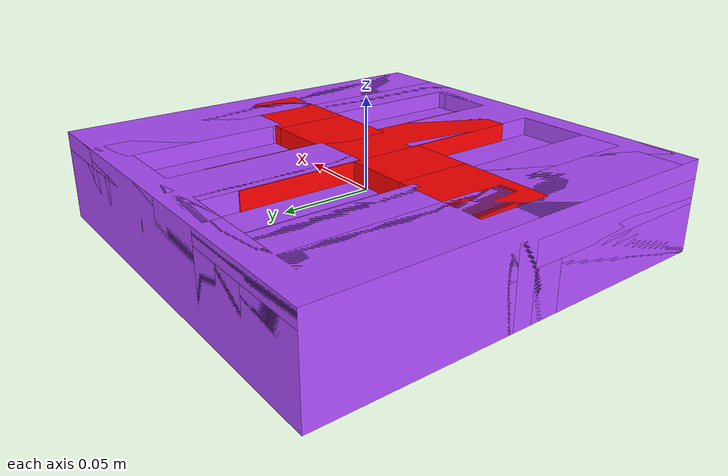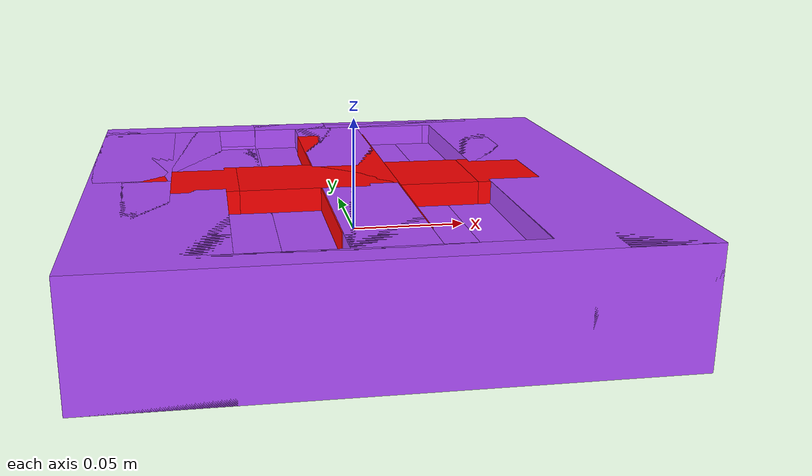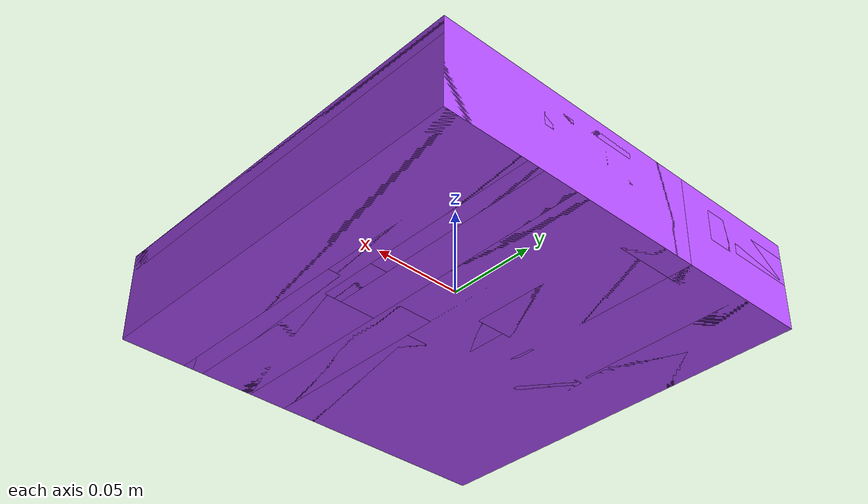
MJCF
<?xml version='1.0' encoding='utf-8'?>
<mujoco model="obj1">
  <asset>
    <mesh name="obj1" file="obj1.obj" scale="0.001 0.001 0.001" />
    <material name="mat1" rgba="0.6902 0.30588 1 1" />
    <mesh name="obj1_p0" file="obj1_part_0.obj" scale="0.001 0.001 0.001" />
    <mesh name="obj1_p1" file="obj1_part_1.obj" scale="0.001 0.001 0.001" />
    <mesh name="obj1_p2" file="obj1_part_2.obj" scale="0.001 0.001 0.001" />
    <mesh name="obj1_p3" file="obj1_part_3.obj" scale="0.001 0.001 0.001" />
    <mesh name="obj1_p4" file="obj1_part_4.obj" scale="0.001 0.001 0.001" />
    <mesh name="obj1_p5" file="obj1_part_5.obj" scale="0.001 0.001 0.001" />
    <mesh name="obj1_p6" file="obj1_part_6.obj" scale="0.001 0.001 0.001" />
    <mesh name="obj1_p7" file="obj1_part_7.obj" scale="0.001 0.001 0.001" />
    <mesh name="obj1_p8" file="obj1_part_8.obj" scale="0.001 0.001 0.001" />
    <mesh name="obj1_p9" file="obj1_part_9.obj" scale="0.001 0.001 0.001" />
    <mesh name="obj1_p10" file="obj1_part_10.obj" scale="0.001 0.001 0.001" />
    <mesh name="obj1_p11" file="obj1_part_11.obj" scale="0.001 0.001 0.001" />
    <mesh name="obj1_p12" file="obj1_part_12.obj" scale="0.001 0.001 0.001" />
    <mesh name="obj1_p13" file="obj1_part_13.obj" scale="0.001 0.001 0.001" />
    <mesh name="obj1_p14" file="obj1_part_14.obj" scale="0.001 0.001 0.001" />
    <mesh name="obj1_p15" file="obj1_part_15.obj" scale="0.001 0.001 0.001" />
    <mesh name="obj1_p16" file="obj1_part_16.obj" scale="0.001 0.001 0.001" />
    <mesh name="obj1_p17" file="obj1_part_17.obj" scale="0.001 0.001 0.001" />
    <mesh name="obj1_p18" file="obj1_part_18.obj" scale="0.001 0.001 0.001" />
    <mesh name="obj1_p19" file="obj1_part_19.obj" scale="0.001 0.001 0.001" />
    <mesh name="obj1_p20" file="obj1_part_20.obj" scale="0.001 0.001 0.001" />
    <mesh name="obj1_p21" file="obj1_part_21.obj" scale="0.001 0.001 0.001" />
    <mesh name="obj1_p22" file="obj1_part_22.obj" scale="0.001 0.001 0.001" />
    <mesh name="obj1_p23" file="obj1_part_23.obj" scale="0.001 0.001 0.001" />
    <mesh name="obj1_p24" file="obj1_part_24.obj" scale="0.001 0.001 0.001" />
    <mesh name="obj1_p25" file="obj1_part_25.obj" scale="0.001 0.001 0.001" />
    <mesh name="obj1_p26" file="obj1_part_26.obj" scale="0.001 0.001 0.001" />
    <mesh name="obj1_p27" file="obj1_part_27.obj" scale="0.001 0.001 0.001" />
    <mesh name="obj1_p28" file="obj1_part_28.obj" scale="0.001 0.001 0.001" />
    <mesh name="obj1_p29" file="obj1_part_29.obj" scale="0.001 0.001 0.001" />
    <mesh name="obj1_p30" file="obj1_part_30.obj" scale="0.001 0.001 0.001" />
    <mesh name="obj1_p31" file="obj1_part_31.obj" scale="0.001 0.001 0.001" />
    <mesh name="obj1_p32" file="obj1_part_32.obj" scale="0.001 0.001 0.001" />
    <mesh name="obj1_p33" file="obj1_part_33.obj" scale="0.001 0.001 0.001" />
    <mesh name="obj1_p34" file="obj1_part_34.obj" scale="0.001 0.001 0.001" />
    <mesh name="obj1_p35" file="obj1_part_35.obj" scale="0.001 0.001 0.001" />
    <mesh name="obj1_p36" file="obj1_part_36.obj" scale="0.001 0.001 0.001" />
    <mesh name="obj1_p37" file="obj1_part_37.obj" scale="0.001 0.001 0.001" />
    <mesh name="obj1_p38" file="obj1_part_38.obj" scale="0.001 0.001 0.001" />
    <mesh name="obj1_p39" file="obj1_part_39.obj" scale="0.001 0.001 0.001" />
    <mesh name="obj1_p40" file="obj1_part_40.obj" scale="0.001 0.001 0.001" />
    <mesh name="obj1_p41" file="obj1_part_41.obj" scale="0.001 0.001 0.001" />
    <mesh name="obj1_p42" file="obj1_part_42.obj" scale="0.001 0.001 0.001" />
    <mesh name="obj1_p43" file="obj1_part_43.obj" scale="0.001 0.001 0.001" />
    <mesh name="obj1_p44" file="obj1_part_44.obj" scale="0.001 0.001 0.001" />
    <mesh name="obj1_p45" file="obj1_part_45.obj" scale="0.001 0.001 0.001" />
    <mesh name="obj1_p46" file="obj1_part_46.obj" scale="0.001 0.001 0.001" />
    <mesh name="obj1_p47" file="obj1_part_47.obj" scale="0.001 0.001 0.001" />
    <mesh name="obj1_p48" file="obj1_part_48.obj" scale="0.001 0.001 0.001" />
    <mesh name="obj1_p49" file="obj1_part_49.obj" scale="0.001 0.001 0.001" />
    <mesh name="obj1_p50" file="obj1_part_50.obj" scale="0.001 0.001 0.001" />
    <mesh name="obj1_p51" file="obj1_part_51.obj" scale="0.001 0.001 0.001" />
    <mesh name="obj1_p52" file="obj1_part_52.obj" scale="0.001 0.001 0.001" />
    <mesh name="obj1_p53" file="obj1_part_53.obj" scale="0.001 0.001 0.001" />
  </asset>
  <worldbody>
    <body>
      <body name="object">
        <inertial pos="0 0 0" mass="0.1" diaginertia="0.0001 0.0001 0.0001" />
        <geom name="visual" mesh="obj1" type="mesh" group="1" contype="0" conaffinity="0" material="mat1" />
        <site name="bottom_site" pos="0 0 -0.025" size="0.005" rgba="0 0 0 0" />
        <site name="top_site" pos="0 0 0.025" size="0.005" rgba="0 0 0 0" />
        <site name="horizontal_radius_site" pos="0.03 0.03 0" size="0.005" rgba="0 0 0 0" />
        <site name="hole_slot_center_vertical_site" pos="0 0 0.0025" size="0.017 0.0825 0.0225" rgba="1 0 0 1" type="box" />
        <site name="hole_slot_center_horizontal_site" pos="0 0 0.020" size="0.051 0.0205 0.005" rgba="1 0 0 1" type="box" />
        <site name="hole_slot_left_horizontal_site" pos="-0.0765 0 0.020" size="0.0255 0.0205 0.005" rgba="1 0 0 1" type="box" />
        <site name="hole_slot_right_horizontal_site" pos="0.0765 0 0.020" size="0.0255 0.0205 0.005" rgba="1 0 0 1" type="box" />
        <geom name="col_0" mesh="obj1_p0" type="mesh" group="0" contype="1" conaffinity="1" friction="0.95 0.3 0.1" solimp="0.9 0.95 0.001" solref="0.02 1" condim="4" material="mat1" />
        <geom name="col_1" mesh="obj1_p1" type="mesh" group="0" contype="1" conaffinity="1" friction="0.95 0.3 0.1" solimp="0.9 0.95 0.001" solref="0.02 1" condim="4" material="mat1" />
        <geom name="col_2" mesh="obj1_p2" type="mesh" group="0" contype="1" conaffinity="1" friction="0.95 0.3 0.1" solimp="0.9 0.95 0.001" solref="0.02 1" condim="4" material="mat1" />
        <geom name="col_3" mesh="obj1_p3" type="mesh" group="0" contype="1" conaffinity="1" friction="0.95 0.3 0.1" solimp="0.9 0.95 0.001" solref="0.02 1" condim="4" material="mat1" />
        <geom name="col_4" mesh="obj1_p4" type="mesh" group="0" contype="1" conaffinity="1" friction="0.95 0.3 0.1" solimp="0.9 0.95 0.001" solref="0.02 1" condim="4" material="mat1" />
        <geom name="col_5" mesh="obj1_p5" type="mesh" group="0" contype="1" conaffinity="1" friction="0.95 0.3 0.1" solimp="0.9 0.95 0.001" solref="0.02 1" condim="4" material="mat1" />
        <geom name="col_6" mesh="obj1_p6" type="mesh" group="0" contype="1" conaffinity="1" friction="0.95 0.3 0.1" solimp="0.9 0.95 0.001" solref="0.02 1" condim="4" material="mat1" />
        <geom name="col_7" mesh="obj1_p7" type="mesh" group="0" contype="1" conaffinity="1" friction="0.95 0.3 0.1" solimp="0.9 0.95 0.001" solref="0.02 1" condim="4" material="mat1" />
        <geom name="col_8" mesh="obj1_p8" type="mesh" group="0" contype="1" conaffinity="1" friction="0.95 0.3 0.1" solimp="0.9 0.95 0.001" solref="0.02 1" condim="4" material="mat1" />
        <geom name="col_9" mesh="obj1_p9" type="mesh" group="0" contype="1" conaffinity="1" friction="0.95 0.3 0.1" solimp="0.9 0.95 0.001" solref="0.02 1" condim="4" material="mat1" />
        <geom name="col_10" mesh="obj1_p10" type="mesh" group="0" contype="1" conaffinity="1" friction="0.95 0.3 0.1" solimp="0.9 0.95 0.001" solref="0.02 1" condim="4" material="mat1" />
        <geom name="col_11" mesh="obj1_p11" type="mesh" group="0" contype="1" conaffinity="1" friction="0.95 0.3 0.1" solimp="0.9 0.95 0.001" solref="0.02 1" condim="4" material="mat1" />
        <geom name="col_12" mesh="obj1_p12" type="mesh" group="0" contype="1" conaffinity="1" friction="0.95 0.3 0.1" solimp="0.9 0.95 0.001" solref="0.02 1" condim="4" material="mat1" />
        <geom name="col_13" mesh="obj1_p13" type="mesh" group="0" contype="1" conaffinity="1" friction="0.95 0.3 0.1" solimp="0.9 0.95 0.001" solref="0.02 1" condim="4" material="mat1" />
        <geom name="col_14" mesh="obj1_p14" type="mesh" group="0" contype="1" conaffinity="1" friction="0.95 0.3 0.1" solimp="0.9 0.95 0.001" solref="0.02 1" condim="4" material="mat1" />
        <geom name="col_15" mesh="obj1_p15" type="mesh" group="0" contype="1" conaffinity="1" friction="0.95 0.3 0.1" solimp="0.9 0.95 0.001" solref="0.02 1" condim="4" material="mat1" />
        <geom name="col_16" mesh="obj1_p16" type="mesh" group="0" contype="1" conaffinity="1" friction="0.95 0.3 0.1" solimp="0.9 0.95 0.001" solref="0.02 1" condim="4" material="mat1" />
        <geom name="col_17" mesh="obj1_p17" type="mesh" group="0" contype="1" conaffinity="1" friction="0.95 0.3 0.1" solimp="0.9 0.95 0.001" solref="0.02 1" condim="4" material="mat1" />
        <geom name="col_18" mesh="obj1_p18" type="mesh" group="0" contype="1" conaffinity="1" friction="0.95 0.3 0.1" solimp="0.9 0.95 0.001" solref="0.02 1" condim="4" material="mat1" />
        <geom name="col_19" mesh="obj1_p19" type="mesh" group="0" contype="1" conaffinity="1" friction="0.95 0.3 0.1" solimp="0.9 0.95 0.001" solref="0.02 1" condim="4" material="mat1" />
        <geom name="col_20" mesh="obj1_p20" type="mesh" group="0" contype="1" conaffinity="1" friction="0.95 0.3 0.1" solimp="0.9 0.95 0.001" solref="0.02 1" condim="4" material="mat1" />
        <geom name="col_21" mesh="obj1_p21" type="mesh" group="0" contype="1" conaffinity="1" friction="0.95 0.3 0.1" solimp="0.9 0.95 0.001" solref="0.02 1" condim="4" material="mat1" />
        <geom name="col_22" mesh="obj1_p22" type="mesh" group="0" contype="1" conaffinity="1" friction="0.95 0.3 0.1" solimp="0.9 0.95 0.001" solref="0.02 1" condim="4" material="mat1" />
        <geom name="col_23" mesh="obj1_p23" type="mesh" group="0" contype="1" conaffinity="1" friction="0.95 0.3 0.1" solimp="0.9 0.95 0.001" solref="0.02 1" condim="4" material="mat1" />
        <geom name="col_24" mesh="obj1_p24" type="mesh" group="0" contype="1" conaffinity="1" friction="0.95 0.3 0.1" solimp="0.9 0.95 0.001" solref="0.02 1" condim="4" material="mat1" />
        <geom name="col_25" mesh="obj1_p25" type="mesh" group="0" contype="1" conaffinity="1" friction="0.95 0.3 0.1" solimp="0.9 0.95 0.001" solref="0.02 1" condim="4" material="mat1" />
        <geom name="col_26" mesh="obj1_p26" type="mesh" group="0" contype="1" conaffinity="1" friction="0.95 0.3 0.1" solimp="0.9 0.95 0.001" solref="0.02 1" condim="4" material="mat1" />
        <geom name="col_27" mesh="obj1_p27" type="mesh" group="0" contype="1" conaffinity="1" friction="0.95 0.3 0.1" solimp="0.9 0.95 0.001" solref="0.02 1" condim="4" material="mat1" />
        <geom name="col_28" mesh="obj1_p28" type="mesh" group="0" contype="1" conaffinity="1" friction="0.95 0.3 0.1" solimp="0.9 0.95 0.001" solref="0.02 1" condim="4" material="mat1" />
        <geom name="col_29" mesh="obj1_p29" type="mesh" group="0" contype="1" conaffinity="1" friction="0.95 0.3 0.1" solimp="0.9 0.95 0.001" solref="0.02 1" condim="4" material="mat1" />
        <geom name="col_30" mesh="obj1_p30" type="mesh" group="0" contype="1" conaffinity="1" friction="0.95 0.3 0.1" solimp="0.9 0.95 0.001" solref="0.02 1" condim="4" material="mat1" />
        <geom name="col_31" mesh="obj1_p31" type="mesh" group="0" contype="1" conaffinity="1" friction="0.95 0.3 0.1" solimp="0.9 0.95 0.001" solref="0.02 1" condim="4" material="mat1" />
        <geom name="col_32" mesh="obj1_p32" type="mesh" group="0" contype="1" conaffinity="1" friction="0.95 0.3 0.1" solimp="0.9 0.95 0.001" solref="0.02 1" condim="4" material="mat1" />
        <geom name="col_33" mesh="obj1_p33" type="mesh" group="0" contype="1" conaffinity="1" friction="0.95 0.3 0.1" solimp="0.9 0.95 0.001" solref="0.02 1" condim="4" material="mat1" />
        <geom name="col_34" mesh="obj1_p34" type="mesh" group="0" contype="1" conaffinity="1" friction="0.95 0.3 0.1" solimp="0.9 0.95 0.001" solref="0.02 1" condim="4" material="mat1" />
        <geom name="col_35" mesh="obj1_p35" type="mesh" group="0" contype="1" conaffinity="1" friction="0.95 0.3 0.1" solimp="0.9 0.95 0.001" solref="0.02 1" condim="4" material="mat1" />
        <geom name="col_36" mesh="obj1_p36" type="mesh" group="0" contype="1" conaffinity="1" friction="0.95 0.3 0.1" solimp="0.9 0.95 0.001" solref="0.02 1" condim="4" material="mat1" />
        <geom name="col_37" mesh="obj1_p37" type="mesh" group="0" contype="1" conaffinity="1" friction="0.95 0.3 0.1" solimp="0.9 0.95 0.001" solref="0.02 1" condim="4" material="mat1" />
        <geom name="col_38" mesh="obj1_p38" type="mesh" group="0" contype="1" conaffinity="1" friction="0.95 0.3 0.1" solimp="0.9 0.95 0.001" solref="0.02 1" condim="4" material="mat1" />
        <geom name="col_39" mesh="obj1_p39" type="mesh" group="0" contype="1" conaffinity="1" friction="0.95 0.3 0.1" solimp="0.9 0.95 0.001" solref="0.02 1" condim="4" material="mat1" />
        <geom name="col_40" mesh="obj1_p40" type="mesh" group="0" contype="1" conaffinity="1" friction="0.95 0.3 0.1" solimp="0.9 0.95 0.001" solref="0.02 1" condim="4" material="mat1" />
        <geom name="col_41" mesh="obj1_p41" type="mesh" group="0" contype="1" conaffinity="1" friction="0.95 0.3 0.1" solimp="0.9 0.95 0.001" solref="0.02 1" condim="4" material="mat1" />
        <geom name="col_42" mesh="obj1_p42" type="mesh" group="0" contype="1" conaffinity="1" friction="0.95 0.3 0.1" solimp="0.9 0.95 0.001" solref="0.02 1" condim="4" material="mat1" />
        <geom name="col_43" mesh="obj1_p43" type="mesh" group="0" contype="1" conaffinity="1" friction="0.95 0.3 0.1" solimp="0.9 0.95 0.001" solref="0.02 1" condim="4" material="mat1" />
        <geom name="col_44" mesh="obj1_p44" type="mesh" group="0" contype="1" conaffinity="1" friction="0.95 0.3 0.1" solimp="0.9 0.95 0.001" solref="0.02 1" condim="4" material="mat1" />
        <geom name="col_45" mesh="obj1_p45" type="mesh" group="0" contype="1" conaffinity="1" friction="0.95 0.3 0.1" solimp="0.9 0.95 0.001" solref="0.02 1" condim="4" material="mat1" />
        <geom name="col_46" mesh="obj1_p46" type="mesh" group="0" contype="1" conaffinity="1" friction="0.95 0.3 0.1" solimp="0.9 0.95 0.001" solref="0.02 1" condim="4" material="mat1" />
        <geom name="col_47" mesh="obj1_p47" type="mesh" group="0" contype="1" conaffinity="1" friction="0.95 0.3 0.1" solimp="0.9 0.95 0.001" solref="0.02 1" condim="4" material="mat1" />
        <geom name="col_48" mesh="obj1_p48" type="mesh" group="0" contype="1" conaffinity="1" friction="0.95 0.3 0.1" solimp="0.9 0.95 0.001" solref="0.02 1" condim="4" material="mat1" />
        <geom name="col_49" mesh="obj1_p49" type="mesh" group="0" contype="1" conaffinity="1" friction="0.95 0.3 0.1" solimp="0.9 0.95 0.001" solref="0.02 1" condim="4" material="mat1" />
        <geom name="col_50" mesh="obj1_p50" type="mesh" group="0" contype="1" conaffinity="1" friction="0.95 0.3 0.1" solimp="0.9 0.95 0.001" solref="0.02 1" condim="4" material="mat1" />
        <geom name="col_51" mesh="obj1_p51" type="mesh" group="0" contype="1" conaffinity="1" friction="0.95 0.3 0.1" solimp="0.9 0.95 0.001" solref="0.02 1" condim="4" material="mat1" />
        <geom name="col_52" mesh="obj1_p52" type="mesh" group="0" contype="1" conaffinity="1" friction="0.95 0.3 0.1" solimp="0.9 0.95 0.001" solref="0.02 1" condim="4" material="mat1" />
        <geom name="col_53" mesh="obj1_p53" type="mesh" group="0" contype="1" conaffinity="1" friction="0.95 0.3 0.1" solimp="0.9 0.95 0.001" solref="0.02 1" condim="4" material="mat1" />
      </body>
    </body>
  </worldbody>
</mujoco>
